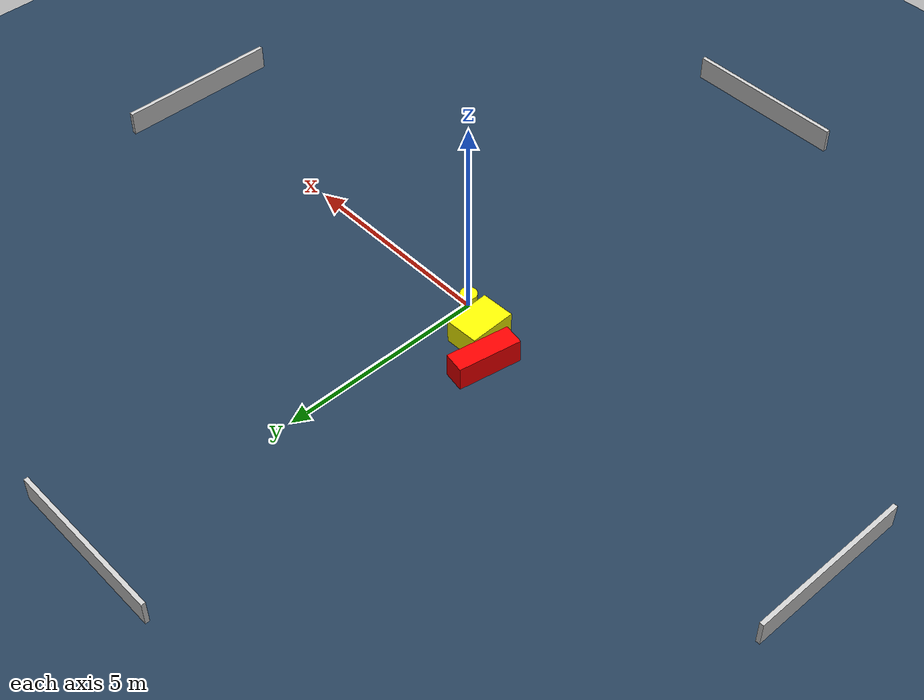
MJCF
<?xml version="1.0" ?>
<mujoco model="generated_environment">
  <option timestep="0.01" integrator="RK4" cone="elliptic"/>
  <default>
    <geom density="1"/>
  </default>
  <asset>
    <texture builtin="gradient" height="3072" name="skybox" rgb1="0.3 0.5 0.7" rgb2="0 0 0" type="skybox" width="512"/>
    <texture builtin="checker" height="300" name="groundplane" rgb1="0.2 0.3 0.4" rgb2="0.1 0.2 0.3" type="2d" width="300"/>
    <material name="groundplane" reflectance="0.2" texrepeat="5 5" texture="groundplane"/>
  </asset>
  <worldbody>
    <light dir="0 0 -1" directional="true" pos="0 0 1.5"/>
    <geom condim="3" friction="0.5 0.005 0.001" material="groundplane" name="floor" pos="0 0 0" size="0 0 0.05" type="plane"/>
    <body name="walls">
      <geom name="wall_1" condim="4" pos="-10.0 0.0 0.3" rgba="0.800000011920929 0.800000011920929 0.800000011920929 1.0" size="0.05 2.0 0.3" type="box"/>
      <geom name="wall_2" condim="4" pos="10.0 0.0 0.3" rgba="0.800000011920929 0.800000011920929 0.800000011920929 1.0" size="0.05 2.0 0.3" type="box"/>
      <geom name="wall_3" condim="4" pos="0.0 -10.0 0.3" rgba="0.800000011920929 0.800000011920929 0.800000011920929 1.0" size="2.0 0.05 0.3" type="box"/>
      <geom name="wall_4" condim="4" pos="0.0 10.0 0.3" rgba="0.800000011920929 0.800000011920929 0.800000011920929 1.0" size="2.0 0.05 0.3" type="box"/>
    </body>
    <body name="robot">
      <joint name="joint_x" type="slide" pos="0 0 0" axis="1 0 0"/>
      <joint name="joint_y" type="slide" pos="0 0 0" axis="0 1 0"/>
      <geom name="robot" type="cylinder" pos="0.0 0.0 0.2" size="0.2 0.2 0.0" mass="5.0" friction="1.0 0.005 0.0001" condim="4" rgba="1.0 1.0 0.0 1.0"/>
    </body>
    <body name="obstacle_1_movable">
      <geom name="obstacle_1_movable" condim="4" pos="-0.8509500090328446 0.46891241882351875 0.3" euler="0 0 92.02524180028036" friction="0.0 0.005 0.001" rgba="1.0 1.0 0.0 1.0" size="0.5659912409124567 0.4079376138201271 0.3" type="box" mass="0.1"/>
      <joint type="free"/>
    </body>
    <body name="obstacle_2_static">
      <geom name="obstacle_2_static" condim="4" pos="-1.5653639943140256 1.0149746140280338 0.3" euler="0 0 80.18969502942089" friction="0.0 0.005 0.001" rgba="1.0 0.0 0.0 1.0" size="0.7674029925821415 0.2584405924057806 0.3" type="box"/>
    </body>
  </worldbody>
  <actuator>
    <motor name="actuator_x" joint="joint_x" gear="1" ctrlrange="-1 1"/>
    <motor name="actuator_y" joint="joint_y" gear="1" ctrlrange="-1 1"/>
  </actuator>
</mujoco>
